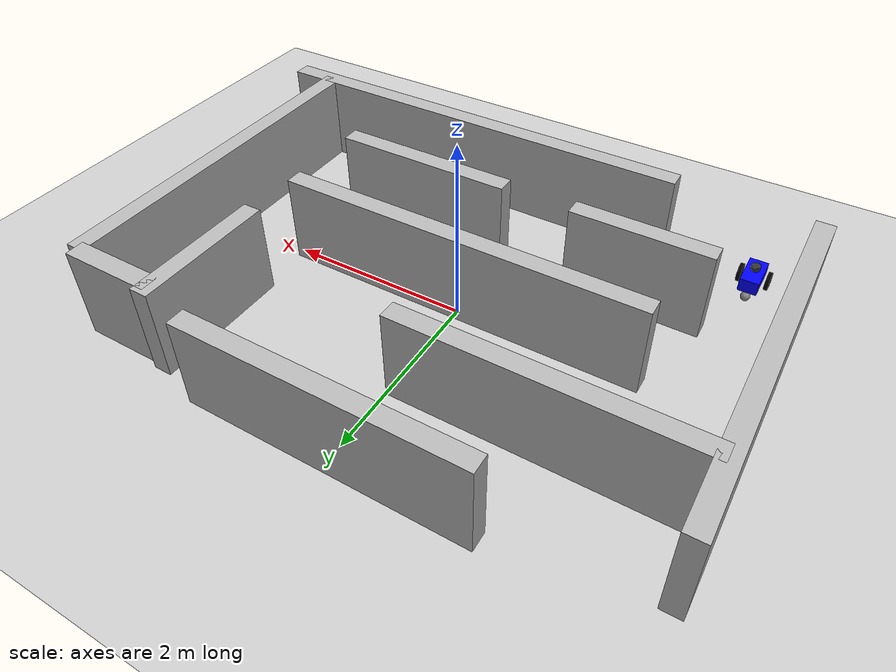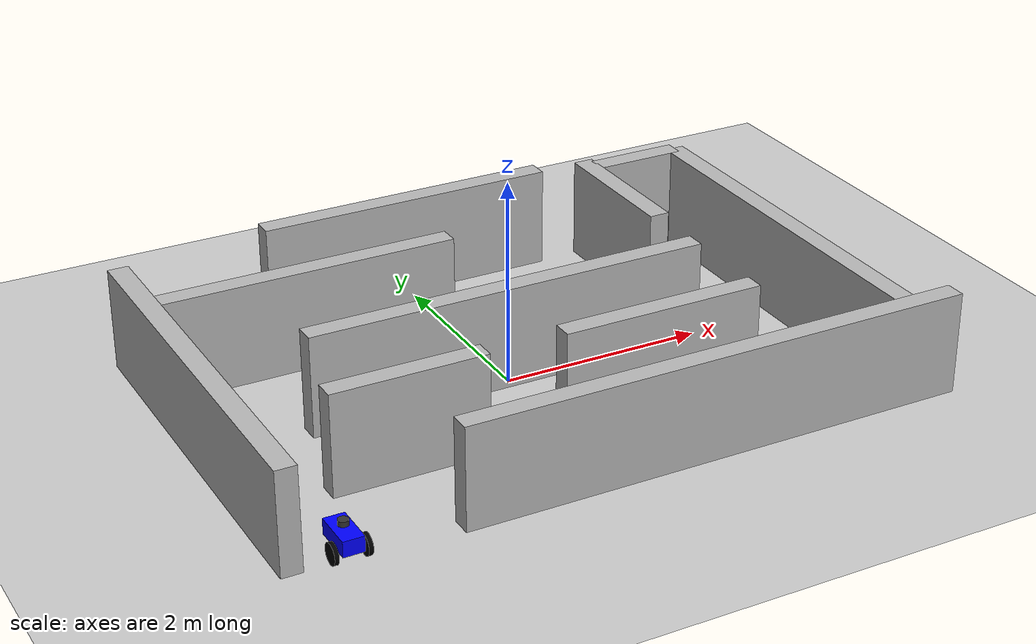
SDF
<?xml version="1.0" ?>
<sdf version="1.8">
  <world name="maze_world">
    <!-- ================= LIGHTING ================= -->
    <light type="directional" name="sun">
      <cast_shadows>true</cast_shadows>
      <pose>0 0 10 0 0 0</pose>
      <diffuse>0.8 0.8 0.8 1</diffuse>
      <specular>0.2 0.2 0.2 1</specular>
      <attenuation>
        <range>1000</range>
        <constant>0.9</constant>
        <linear>0.01</linear>
        <quadratic>0.001</quadratic>
      </attenuation>
      <direction>-0.5 0.1 -0.9</direction>
    </light>

    <!-- ================= GROUND PLANE ================= -->
    <model name="ground_plane">
      <static>true</static>
      <link name="link">
        <collision name="collision">
          <geometry>
            <plane><normal>0 0 1</normal></plane>
          </geometry>
        </collision>
        <visual name="visual">
          <geometry>
            <plane><normal>0 0 1</normal><size>100 100</size></plane>
          </geometry>
        </visual>
      </link>
    </model>

    <!-- ================= MAZE WALLS ================= -->
    <model name="wall_1">
      <static>true</static>
      <pose>-3 0 0.5 0 0 0</pose>
      <link name="link">
        <collision name="collision"><geometry><box><size>0.2 4.0 1.0</size></box></geometry></collision>
        <visual name="visual"><geometry><box><size>0.2 4.0 1.0</size></box></geometry></visual>
      </link>
    </model>

    <model name="wall_2a">
      <static>true</static>
      <pose>0 2.2 0.5 0 0 0</pose>
      <link name="link">
        <collision name="collision"><geometry><box><size>3.0 0.2 1.0</size></box></geometry></collision>
        <visual name="visual"><geometry><box><size>3.0 0.2 1.0</size></box></geometry></visual>
      </link>
    </model>

    <model name="wall_2b">
      <static>true</static>
      <pose>2.5 2 0.5 0 0 0</pose>
      <link name="link">
        <collision name="collision"><geometry><box><size>1.0 0.2 1.0</size></box></geometry></collision>
        <visual name="visual"><geometry><box><size>1.0 0.2 1.0</size></box></geometry></visual>
      </link>
    </model>

    <model name="wall_3">
      <static>true</static>
      <pose>0 0 0.5 0 0 0</pose>
      <link name="link">
        <collision name="collision"><geometry><box><size>4.0 0.2 1.0</size></box></geometry></collision>
        <visual name="visual"><geometry><box><size>4.0 0.2 1.0</size></box></geometry></visual>
      </link>
    </model>

    <model name="wall_4">
      <static>true</static>
      <pose>3 0 0.5 0 0 0</pose>
      <link name="link">
        <collision name="collision"><geometry><box><size>0.2 4.0 1.0</size></box></geometry></collision>
        <visual name="visual"><geometry><box><size>0.2 4.0 1.0</size></box></geometry></visual>
      </link>
    </model>

    <model name="wall_5">
      <static>true</static>
      <pose>1 -1 0.5 0 0 0</pose>
      <link name="link">
        <collision name="collision"><geometry><box><size>2.0 0.2 1.0</size></box></geometry></collision>
        <visual name="visual"><geometry><box><size>2.0 0.2 1.0</size></box></geometry></visual>
      </link>
    </model>

    <model name="wall_6">
      <static>true</static>
      <pose>1 -2 0.5 0 0 0</pose>
      <link name="link">
        <collision name="collision"><geometry><box><size>5.0 0.2 1.0</size></box></geometry></collision>
        <visual name="visual"><geometry><box><size>5.0 0.2 1.0</size></box></geometry></visual>
      </link>
    </model>

    <model name="wall_7">
      <static>true</static>
      <pose>2 1.4 0.5 0 0 0</pose>
      <link name="link">
        <collision name="collision"><geometry><box><size>0.2 1.5 1.0</size></box></geometry></collision>
        <visual name="visual"><geometry><box><size>0.2 1.5 1.0</size></box></geometry></visual>
      </link>
    </model>

    <model name="wall_8">
      <static>true</static>
      <pose>-1.5 1.2 0.5 0 0 0</pose>
      <link name="link">
        <collision name="collision"><geometry><box><size>3.0 0.2 1.0</size></box></geometry></collision>
        <visual name="visual"><geometry><box><size>3.0 0.2 1.0</size></box></geometry></visual>
      </link>
    </model>

    <model name="wall_9">
      <static>true</static>
      <pose>-1.5 -1 0.5 0 0 0</pose>
      <link name="link">
        <collision name="collision"><geometry><box><size>1.5 0.2 1.0</size></box></geometry></collision>
        <visual name="visual"><geometry><box><size>1.5 0.2 1.0</size></box></geometry></visual>
      </link>
    </model>

  <!-- ================= MY ROBOT ================= -->
<model name="my_robot">
  <static>false</static>
  <!-- Spawn height = wheel radius, since chassis link origin is now at axle height -->
  <pose>-2.5 -2 0.1 0 0 1.5707</pose>

  <!-- CHASSIS - link origin is at wheel-axle height, box visual/collision shifted up -->
  <link name="chassis">
    <pose>0 0 0 0 0 0</pose>
    <inertial>
      <pose>0.1 0 0.075 0 0 0</pose>
      <mass>5.0</mass>
      <inertia>
        <ixx>0.026042</ixx><ixy>0.0</ixy><ixz>0.0</ixz>
        <iyy>0.076042</iyy><iyz>0.0</iyz>
        <izz>0.083333</izz>
      </inertia>
    </inertial>
    <collision name="collision">
      <pose>0.1 0 0.075 0 0 0</pose>
      <geometry>
        <box><size>0.4 0.2 0.15</size></box>
      </geometry>
    </collision>
    <visual name="visual">
      <pose>0.1 0 0.075 0 0 0</pose>
      <geometry>
        <box><size>0.4 0.2 0.15</size></box>
      </geometry>
      <material>
        <ambient>0 0 1 1</ambient>
        <diffuse>0 0 1 1</diffuse>
      </material>
    </visual>
  </link>

  <!-- LIDAR LINK - sits on top of chassis -->
  <link name="lidar_link">
    <pose>0.1 0 0.2 0 0 0</pose>
    <inertial>
      <mass>0.1</mass>
      <inertia>
        <ixx>0.000083</ixx><ixy>0.0</ixy><ixz>0.0</ixz>
        <iyy>0.000083</iyy><iyz>0.0</iyz>
        <izz>0.000125</izz>
      </inertia>
    </inertial>
    <collision name="collision">
      <geometry>
        <cylinder><radius>0.05</radius><length>0.05</length></cylinder>
      </geometry>
    </collision>
    <visual name="visual">
      <geometry>
        <cylinder><radius>0.05</radius><length>0.05</length></cylinder>
      </geometry>
      <material>
        <ambient>0.2 0.2 0.2 1</ambient>
        <diffuse>0.2 0.2 0.2 1</diffuse>
      </material>
    </visual>
  </link>

  <joint name="lidar_joint" type="fixed">
    <parent>chassis</parent>
    <child>lidar_link</child>
  </joint>

  <!-- LEFT WHEEL - centered at axle height (z=0 relative to model origin) -->
  <link name="left_back_wheel">
    <pose>0 0.15 0 1.5707 0 0</pose>
    <inertial>
      <mass>0.5</mass>
      <inertia>
        <ixx>0.001317</ixx><ixy>0.0</ixy><ixz>0.0</ixz>
        <iyy>0.001317</iyy><iyz>0.0</iyz>
        <izz>0.002500</izz>
      </inertia>
    </inertial>
    <collision name="collision">
      <geometry>
        <cylinder><radius>0.1</radius><length>0.04</length></cylinder>
      </geometry>
      <surface>
        <friction>
          <ode><mu>1.0</mu><mu2>0.5</mu2></ode>
        </friction>
      </surface>
    </collision>
    <visual name="visual">
      <geometry>
        <cylinder><radius>0.1</radius><length>0.04</length></cylinder>
      </geometry>
      <material>
        <ambient>0 0 0 1</ambient>
        <diffuse>0 0 0 1</diffuse>
      </material>
    </visual>
  </link>

  <joint name="left_wheel_joint" type="revolute">
    <parent>chassis</parent>
    <child>left_back_wheel</child>
    <axis>
      <xyz>0 1 0</xyz>
    </axis>
  </joint>

  <!-- RIGHT WHEEL -->
  <link name="right_back_wheel">
    <pose>0 -0.15 0 1.5707 0 0</pose>
    <inertial>
      <mass>0.5</mass>
      <inertia>
        <ixx>0.001317</ixx><ixy>0.0</ixy><ixz>0.0</ixz>
        <iyy>0.001317</iyy><iyz>0.0</iyz>
        <izz>0.002500</izz>
      </inertia>
    </inertial>
    <collision name="collision">
      <geometry>
        <cylinder><radius>0.1</radius><length>0.04</length></cylinder>
      </geometry>
      <surface>
        <friction>
          <ode><mu>1.0</mu><mu2>0.5</mu2></ode>
        </friction>
      </surface>
    </collision>
    <visual name="visual">
      <geometry>
        <cylinder><radius>0.1</radius><length>0.04</length></cylinder>
      </geometry>
      <material>
        <ambient>0 0 0 1</ambient>
        <diffuse>0 0 0 1</diffuse>
      </material>
    </visual>
  </link>

  <joint name="right_wheel_joint" type="revolute">
    <parent>chassis</parent>
    <child>right_back_wheel</child>
    <axis>
      <xyz>0 1 0</xyz>
    </axis>
  </joint>

  <!-- FRONT CASTER - bottom of sphere matches wheel-radius height -->
  <link name="front_wheel">
    <pose>0.3 0 -0.05 0 0 0</pose>
    <inertial>
      <mass>0.2</mass>
      <inertia>
        <ixx>0.000200</ixx><ixy>0.0</ixy><ixz>0.0</ixz>
        <iyy>0.000200</iyy><iyz>0.0</iyz>
        <izz>0.000200</izz>
      </inertia>
    </inertial>
    <collision name="collision">
      <geometry>
        <sphere><radius>0.05</radius></sphere>
      </geometry>
      <surface>
        <friction>
          <ode><mu>0.0</mu><mu2>0.0</mu2></ode>
        </friction>
      </surface>
    </collision>
    <visual name="visual">
      <geometry>
        <sphere><radius>0.05</radius></sphere>
      </geometry>
      <material>
        <ambient>0.5 0.5 0.5 1</ambient>
        <diffuse>0.5 0.5 0.5 1</diffuse>
      </material>
    </visual>
  </link>

  <joint name="front_wheel_joint" type="ball">
    <parent>chassis</parent>
    <child>front_wheel</child>
  </joint>

  <!-- DIFF DRIVE PLUGIN -->
  <plugin filename="gz-sim-diff-drive-system" name="gz::sim::systems::DiffDrive">
    <left_joint>left_wheel_joint</left_joint>
    <right_joint>right_wheel_joint</right_joint>
    <wheel_separation>0.30</wheel_separation>
    <wheel_radius>0.1</wheel_radius>
    <odom_publish_frequency>10</odom_publish_frequency>
    <max_linear_velocity>0.5</max_linear_velocity>
    <min_linear_velocity>-0.5</min_linear_velocity>
    <max_angular_velocity>1.0</max_angular_velocity>
    <min_angular_velocity>-1.0</min_angular_velocity>
    <topic>/cmd_vel</topic>
  </plugin>

</model>

  </world>
</sdf>
